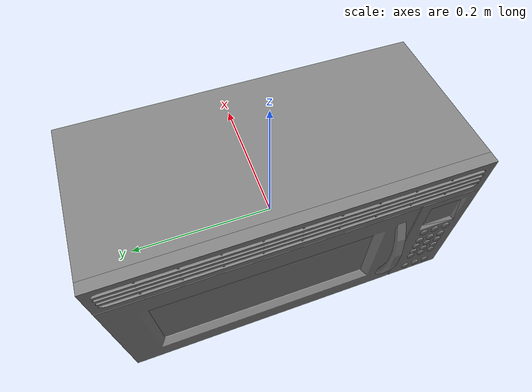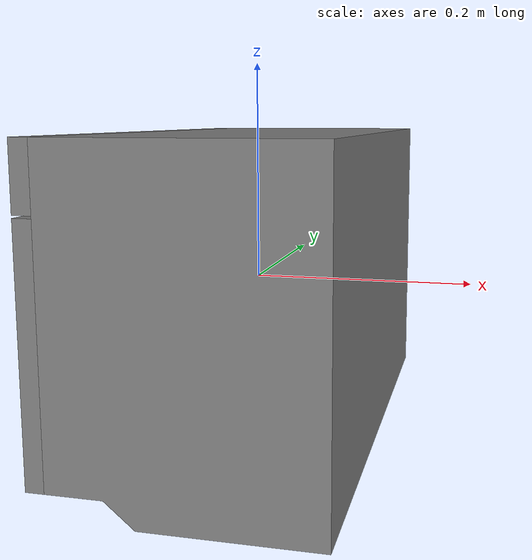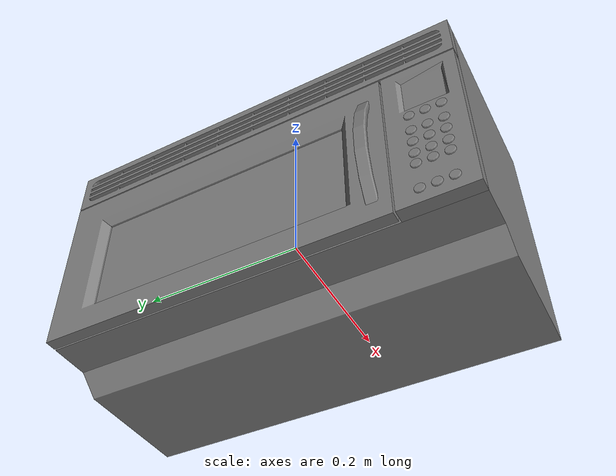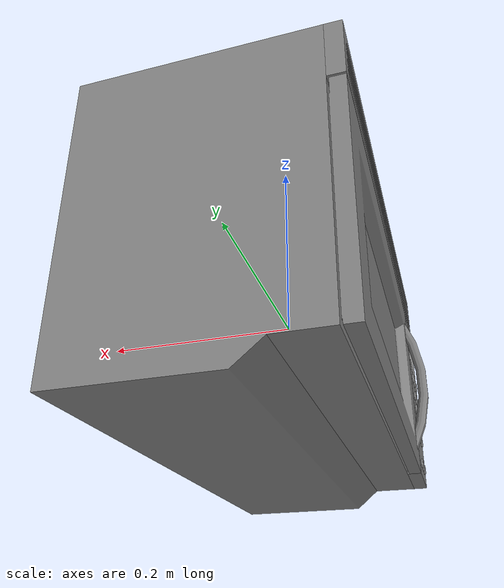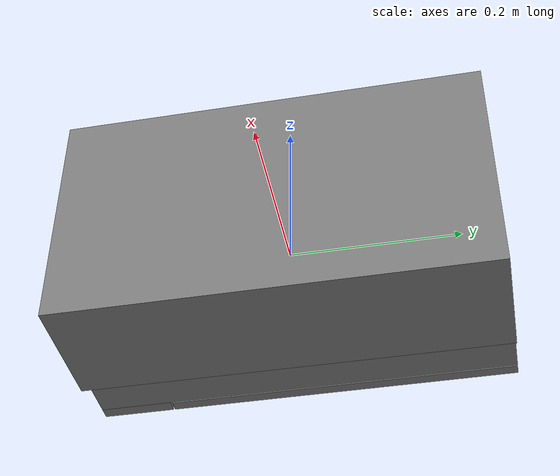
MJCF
<mujoco model="partnet_87bae84777fe8b702bac1bcdfc2402d2">
    <compiler angle="radian" />
    <size njmax="500" nconmax="100" />
    <asset>
        <mesh name="original-4" file="original-4.stl" scale="0.3 0.3 0.3" />
        <mesh name="original-2" file="original-2.stl" scale="0.3 0.3 0.3" />
        <mesh name="original-3" file="original-3.stl" scale="0.3 0.3 0.3" />
        <mesh name="original-12" file="original-12.stl" scale="0.3 0.3 0.3" />
        <mesh name="original-13" file="original-13.stl" scale="0.3 0.3 0.3" />
        <mesh name="original-15" file="original-15.stl" scale="0.3 0.3 0.3" />
        <mesh name="original-14" file="original-14.stl" scale="0.3 0.3 0.3" />
        <mesh name="original-16" file="original-16.stl" scale="0.3 0.3 0.3" />
        <mesh name="original-26" file="original-26.stl" scale="0.3 0.3 0.3" />
        <mesh name="original-17" file="original-17.stl" scale="0.3 0.3 0.3" />
        <mesh name="original-19" file="original-19.stl" scale="0.3 0.3 0.3" />
        <mesh name="original-20" file="original-20.stl" scale="0.3 0.3 0.3" />
        <mesh name="original-23" file="original-23.stl" scale="0.3 0.3 0.3" />
        <mesh name="original-27" file="original-27.stl" scale="0.3 0.3 0.3" />
        <mesh name="original-21" file="original-21.stl" scale="0.3 0.3 0.3" />
        <mesh name="original-22" file="original-22.stl" scale="0.3 0.3 0.3" />
        <mesh name="original-18" file="original-18.stl" scale="0.3 0.3 0.3" />
        <mesh name="original-25" file="original-25.stl" scale="0.3 0.3 0.3" />
        <mesh name="original-11" file="original-11.stl" scale="0.3 0.3 0.3" />
        <mesh name="original-10" file="original-10.stl" scale="0.3 0.3 0.3" />
        <mesh name="original-24" file="original-24.stl" scale="0.3 0.3 0.3" />
        <mesh name="new-0" file="new-0.stl" scale="0.3 0.3 0.3" />
        <mesh name="new-3" file="new-3.stl" scale="0.3 0.3 0.3" />
        <mesh name="original-6" file="original-6.stl" scale="0.3 0.3 0.3" />
        <mesh name="new-1" file="new-1.stl" scale="0.3 0.3 0.3" />
        <mesh name="new-2" file="new-2.stl" scale="0.3 0.3 0.3" />
    </asset>
    <worldbody>
    <body>
        <body name="object">
        <geom quat="0.5 0.5 -0.5 -0.5" type="mesh" group="0" mesh="new-0" conaffinity="0" contype="0" />
        <geom quat="0.5 0.5 -0.5 -0.5" type="mesh" group="0" mesh="new-3" conaffinity="0" contype="0" />
        <geom quat="0.5 0.5 -0.5 -0.5" type="mesh" group="0" mesh="original-6" conaffinity="0" contype="0" />
        <geom quat="0.5 0.5 -0.5 -0.5" type="mesh" group="0" mesh="new-1" conaffinity="0" contype="0" />
        <geom quat="0.5 0.5 -0.5 -0.5" type="mesh" group="0" mesh="new-2" conaffinity="0" contype="0" />
        <body name="link_0" pos="-0.10979699999999999 0.24122939999999998 0.13714079999999998" quat="0.5 0.5 -0.5 -0.5">
            <inertial pos="0.2034417 -0.1584678 -0.007122389999999999" quat="0.000147775 0.705485 -0.000129004 0.708725" mass="42.822" diaginertia="7.96437 6.50365 1.48015" />
            <joint name="joint_0" pos="0.0 0.0 0.0" axis="0 -1 0" limited="true" range="0 1.5708" />
            <geom pos="0.24122939999999998 -0.13714079999999998 -0.10979699999999999" type="mesh" group="0" mesh="original-4" name="panel" />
            <geom pos="0.24122939999999998 -0.13714079999999998 -0.10979699999999999" type="mesh" group="0" mesh="original-2" />
            <geom pos="0.24122939999999998 -0.13714079999999998 -0.10979699999999999" type="mesh" group="0" mesh="original-3" />
        </body>
        <body name="link_1" pos="-0.1101741 -0.237534 -0.0426456" quat="0.5 0.5 -0.5 -0.5">
            <inertial pos="-0.01496619 -0.0621309 0.000937587" quat="0 0.707107 0 0.707107" mass="0.00643555" diaginertia="1.09861e-06 5.70476e-07 5.70476e-07" />
            <joint name="joint_1" pos="0.0 0.0 0.0" axis="0 0 -1" type="slide" limited="true" range="0.0 0.0075" />
            <geom pos="-0.237534 0.0426456 -0.1101741" type="mesh" group="0" mesh="original-12" />
        </body>
        <body name="link_2" pos="-0.1101741 -0.237534 -0.0426456" quat="0.5 0.5 -0.5 -0.5">
            <inertial pos="-0.0321393 -0.0621309 0.000937587" quat="0 0.707107 0 0.707107" mass="0.00643557" diaginertia="1.09861e-06 5.7048e-07 5.70478e-07" />
            <joint name="joint_2" pos="0.0 0.0 0.0" axis="0 0 -1" type="slide" limited="true" range="0.0 0.0075" />
            <geom pos="-0.237534 0.0426456 -0.1101741" type="mesh" group="0" mesh="original-13" />
        </body>
        <body name="link_3" pos="-0.1101741 -0.237534 -0.0426456" quat="0.5 0.5 -0.5 -0.5">
            <inertial pos="-0.0493128 -0.0621309 0.000937587" quat="0.5 0.5 -0.5 0.5" mass="0.00643557" diaginertia="1.09861e-06 5.7049e-07 5.70468e-07" />
            <joint name="joint_3" pos="0.0 0.0 0.0" axis="0 0 -1" type="slide" limited="true" range="0.0 0.0075" />
            <geom pos="-0.237534 0.0426456 -0.1101741" type="mesh" group="0" mesh="original-15" />
        </body>
        <body name="link_4" pos="-0.1101741 -0.237534 -0.0426456" quat="0.5 0.5 -0.5 -0.5">
            <inertial pos="-0.0493128 -0.02778441 0.00093759" quat="0.5 0.5 -0.5 0.5" mass="0.00643548" diaginertia="1.09858e-06 5.70467e-07 5.7046e-07" />
            <joint name="joint_4" pos="0.0 0.0 0.0" axis="0 0 -1" type="slide" limited="true" range="0.0 0.0075" />
            <geom pos="-0.237534 0.0426456 -0.1101741" type="mesh" group="0" mesh="original-14" />
        </body>
        <body name="link_5" pos="-0.1101741 -0.237534 -0.0426456" quat="0.5 0.5 -0.5 -0.5">
            <inertial pos="-0.0321393 -0.02778441 0.00093759" quat="0 0.707107 0 0.707107" mass="0.00643548" diaginertia="1.09858e-06 5.70472e-07 5.70455e-07" />
            <joint name="joint_5" pos="0.0 0.0 0.0" axis="0 0 -1" type="slide" limited="true" range="0.0 0.0075" />
            <geom pos="-0.237534 0.0426456 -0.1101741" type="mesh" group="0" mesh="original-16" />
        </body>
        <body name="link_6" pos="-0.1101741 -0.237534 -0.0426456" quat="0.5 0.5 -0.5 -0.5">
            <inertial pos="-0.01496619 -0.02778441 0.000937587" quat="0 0.707107 0 0.707107" mass="0.00643546" diaginertia="1.09858e-06 5.70468e-07 5.70454e-07" />
            <joint name="joint_6" pos="0.0 0.0 0.0" axis="0 0 -1" type="slide" limited="true" range="0.0 0.0075" />
            <geom pos="-0.237534 0.0426456 -0.1101741" type="mesh" group="0" mesh="original-26" />
        </body>
        <body name="link_7" pos="-0.1101741 -0.237534 -0.0426456" quat="0.5 0.5 -0.5 -0.5">
            <inertial pos="-0.01496619 -0.012519299999999999 0.000937587" quat="0 0.707107 0 0.707107" mass="0.00643555" diaginertia="1.09861e-06 5.70476e-07 5.70476e-07" />
            <joint name="joint_7" pos="0.0 0.0 0.0" axis="0 0 -1" type="slide" limited="true" range="0.0 0.0075" />
            <geom pos="-0.237534 0.0426456 -0.1101741" type="mesh" group="0" mesh="original-17" />
        </body>
        <body name="link_8" pos="-0.1101741 -0.237534 -0.0426456" quat="0.5 0.5 -0.5 -0.5">
            <inertial pos="-0.0321393 -0.012519299999999999 0.000937587" quat="0 0.707107 0 0.707107" mass="0.00643557" diaginertia="1.09861e-06 5.7048e-07 5.70477e-07" />
            <joint name="joint_8" pos="0.0 0.0 0.0" axis="0 0 -1" type="slide" limited="true" range="0.0 0.0075" />
            <geom pos="-0.237534 0.0426456 -0.1101741" type="mesh" group="0" mesh="original-19" />
        </body>
        <body name="link_9" pos="-0.1101741 -0.237534 -0.0426456" quat="0.5 0.5 -0.5 -0.5">
            <inertial pos="-0.0493128 -0.012519299999999999 0.000937587" quat="0.5 0.5 -0.5 0.5" mass="0.00643557" diaginertia="1.09861e-06 5.7049e-07 5.70468e-07" />
            <joint name="joint_9" pos="0.0 0.0 0.0" axis="0 0 -1" type="slide" limited="true" range="0.0 0.0075" />
            <geom pos="-0.237534 0.0426456 -0.1101741" type="mesh" group="0" mesh="original-20" />
        </body>
        <body name="link_10" pos="-0.1101741 -0.237534 -0.0426456" quat="0.5 0.5 -0.5 -0.5">
            <inertial pos="-0.0493128 0.0046539 0.00093759" quat="0.5 0.5 -0.5 0.5" mass="0.00643558" diaginertia="1.09862e-06 5.70493e-07 5.70469e-07" />
            <joint name="joint_10" pos="0.0 0.0 0.0" axis="0 0 -1" type="slide" limited="true" range="0.0 0.0075" />
            <geom pos="-0.237534 0.0426456 -0.1101741" type="mesh" group="0" mesh="original-23" />
        </body>
        <body name="link_11" pos="-0.1101741 -0.237534 -0.0426456" quat="0.5 0.5 -0.5 -0.5">
            <inertial pos="-0.0321393 0.0046539 0.00093759" quat="0 0.707107 0 0.707107" mass="0.00643558" diaginertia="1.09862e-06 5.70481e-07 5.70481e-07" />
            <joint name="joint_11" pos="0.0 0.0 0.0" axis="0 0 -1" type="slide" limited="true" range="0.0 0.0075" />
            <geom pos="-0.237534 0.0426456 -0.1101741" type="mesh" group="0" mesh="original-27" />
        </body>
        <body name="link_12" pos="-0.1101741 -0.237534 -0.0426456" quat="0.5 0.5 -0.5 -0.5">
            <inertial pos="-0.01496619 0.0046539 0.000937587" quat="0.5 0.5 -0.5 0.5" mass="0.00643556" diaginertia="1.09861e-06 5.70479e-07 5.70477e-07" />
            <joint name="joint_12" pos="0.0 0.0 0.0" axis="0 0 -1" type="slide" limited="true" range="0.0 0.0075" />
            <geom pos="-0.237534 0.0426456 -0.1101741" type="mesh" group="0" mesh="original-21" />
        </body>
        <body name="link_13" pos="-0.1101741 -0.237534 -0.0426456" quat="0.5 0.5 -0.5 -0.5">
            <inertial pos="-0.01496619 0.02182719 0.000937587" quat="0 0.707107 0 0.707107" mass="0.00643547" diaginertia="1.09858e-06 5.70468e-07 5.70454e-07" />
            <joint name="joint_13" pos="0.0 0.0 0.0" axis="0 0 -1" type="slide" limited="true" range="0.0 0.0075" />
            <geom pos="-0.237534 0.0426456 -0.1101741" type="mesh" group="0" mesh="original-22" />
        </body>
        <body name="link_14" pos="-0.1101741 -0.237534 -0.0426456" quat="0.5 0.5 -0.5 -0.5">
            <inertial pos="-0.0321393 0.02182719 0.00093759" quat="0 0.707107 0 0.707107" mass="0.00643548" diaginertia="1.09858e-06 5.70472e-07 5.70455e-07" />
            <joint name="joint_14" pos="0.0 0.0 0.0" axis="0 0 -1" type="slide" limited="true" range="0.0 0.0075" />
            <geom pos="-0.237534 0.0426456 -0.1101741" type="mesh" group="0" mesh="original-18" />
        </body>
        <body name="link_15" pos="-0.1101741 -0.237534 -0.0426456" quat="0.5 0.5 -0.5 -0.5">
            <inertial pos="-0.0493128 0.02182719 0.00093759" quat="0.5 0.5 -0.5 0.5" mass="0.00643548" diaginertia="1.09858e-06 5.70467e-07 5.7046e-07" />
            <joint name="joint_15" pos="0.0 0.0 0.0" axis="0 0 -1" type="slide" limited="true" range="0.0 0.0075" />
            <geom pos="-0.237534 0.0426456 -0.1101741" type="mesh" group="0" mesh="original-25" />
        </body>
        <body name="link_16" pos="-0.1101741 -0.237534 -0.0426456" quat="0.5 0.5 -0.5 -0.5">
            <inertial pos="-0.01496619 0.0447249 0.000937587" quat="0 0.707107 0 0.707107" mass="0.00643556" diaginertia="1.09861e-06 5.70489e-07 5.70467e-07" />
            <joint name="joint_16" pos="0.0 0.0 0.0" axis="0 0 -1" type="slide" limited="true" range="0.0 0.0075" />
            <geom pos="-0.237534 0.0426456 -0.1101741" type="mesh" group="0" mesh="original-11" />
        </body>
        <body name="link_17" pos="-0.1101741 -0.237534 -0.0426456" quat="0.5 0.5 -0.5 -0.5">
            <inertial pos="-0.0321393 0.0447249 0.00093759" quat="0 0.707107 0 0.707107" mass="0.00643558" diaginertia="1.09862e-06 5.70493e-07 5.70469e-07" />
            <joint name="joint_17" pos="0.0 0.0 0.0" axis="0 0 -1" type="slide" limited="true" range="0.0 0.0075" />
            <geom pos="-0.237534 0.0426456 -0.1101741" type="mesh" group="0" mesh="original-10" />
        </body>
        <body name="link_18" pos="-0.1101741 -0.237534 -0.0426456" quat="0.5 0.5 -0.5 -0.5">
            <inertial pos="-0.0493128 0.0447249 0.00093759" quat="0 0.707107 0 0.707107" mass="0.00643558" diaginertia="1.09862e-06 5.70481e-07 5.70481e-07" />
            <joint name="joint_18" pos="0.0 0.0 0.0" axis="0 0 -1" type="slide" limited="true" range="0.0 0.0075" />
            <geom pos="-0.237534 0.0426456 -0.1101741" type="mesh" group="0" mesh="original-24" />
        </body>
     </body>
        <site name="bottom_site" pos="0 0 -0.3" rgba="0 0 0 0" size="0.005" />
        <site name="top_site" pos="0 0 0.3" rgba="0 0 0 0" size="0.005" />
        <site name="horizontal_radius_site" pos="0.3 0 0" rgba="0 0 0 0" size="0.1" />
    </body>
    </worldbody>
</mujoco>
